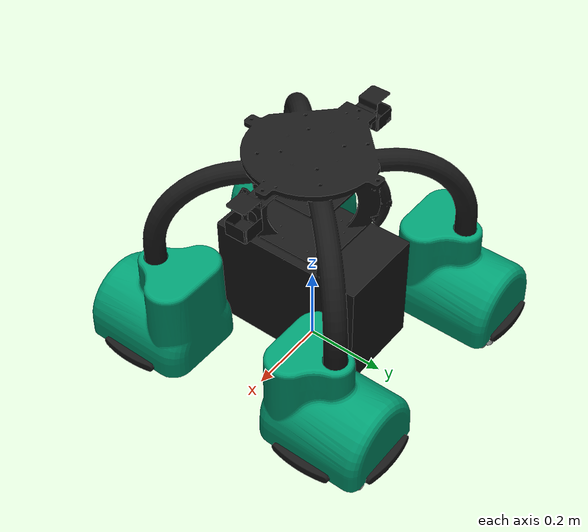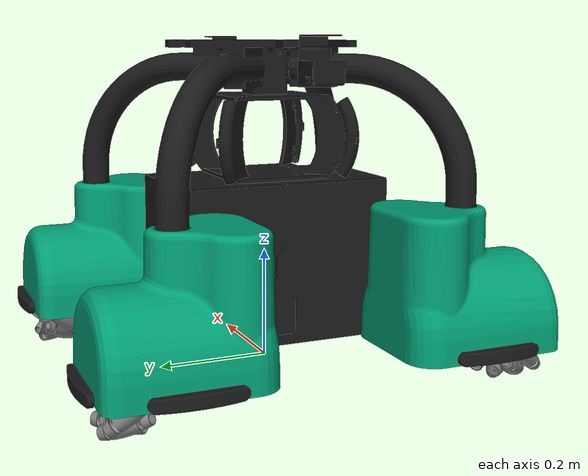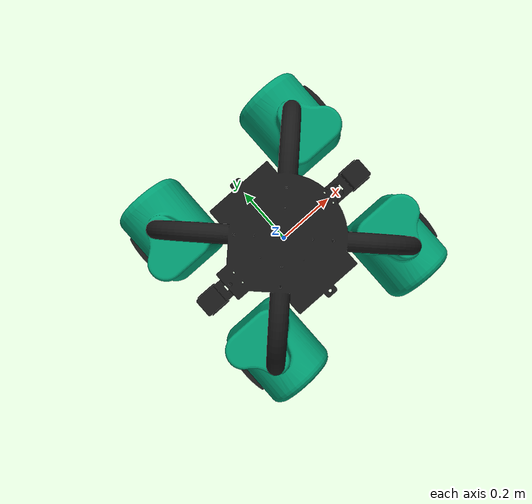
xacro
<?xml version="1.0"?>
<robot xmlns:xacro="http://www.ros.org/wiki/xacro" name="mobility_base">
  <xacro:arg name="gazebo" default="false"/>
  <xacro:arg name="baxter" default="false"/>
  <xacro:arg name="fast"   default="true"/>

  <xacro:property name="M_PI" value="3.1415926535897931" />

  <xacro:property name="base_mass" value="20" />
  <xacro:property name="base_length" value="0.2159" />
  <xacro:property name="base_width" value="0.381" />
  <xacro:property name="base_height" value="0.2921" />

  <xacro:property name="shroud_base_x" value="${0.5055/2}" />
  <xacro:property name="shroud_base_y" value="${0.5055/2}" />
  <xacro:property name="shroud_x" value="${0.2286/2}" />
  <xacro:property name="shroud_y" value="${0.2733/2}" />
  <xacro:property name="bumper_z" value="${-0.0189}" />
  <xacro:property name="bumper_travel" value="${0.003175}" />

  <xacro:property name="wheel_base_x" value="${0.5055/2}" />
  <xacro:property name="wheel_base_y" value="${0.6805/2}" />
  <xacro:property name="wheel_mass" value="2" />
  <xacro:property name="wheel_radius" value="0.1016" />
  <xacro:property name="wheel_width" value="0.0508" />

  <xacro:property name="roller_mass" value="0.0476272" />
  <xacro:property name="roller_radius" value="0.015875" />
  <xacro:property name="roller_length" value="0.0861568" />

  <xacro:property name="lidar_bracket_x" value="${0.2317}" />
  <xacro:property name="lidar_bracket_z" value="${0.4116}" />

  <xacro:property name="birdcage_plate" value="${0.0055}" />
  <xacro:property name="birdcage_bottom" value="${0.2440}" />
  <xacro:property name="birdcage_top" value="${0.3777}" />

  <xacro:property name="mount_x" value="$(optenv MB_MOUNT_X 0)" />
  <xacro:property name="mount_y" value="$(optenv MB_MOUNT_Y 0)" />
  <xacro:property name="mount_z" value="$(optenv MB_MOUNT_Z 0)" />
  <xacro:property name="mount_z_baxter" value="${0.5293}" />

  <!-- Materials -->
  <xacro:macro name="darkred_material" >
    <material name="darkred" >
      <color rgba=".5 .1 .1 1"/>
    </material>
  </xacro:macro>
  <xacro:macro name="grey_material" >
    <material name="grey" >
      <color rgba=".5 .5 .5 1"/>
    </material>
  </xacro:macro>
  <xacro:macro name="black_material" >
    <material name="black" >
      <color rgba=".1 .1 .1 1"/>
    </material>
  </xacro:macro>

  <!-- Macro Single Roller -->
  <xacro:macro name="roller_fixed" params="flip c s" >
    <visual>
      <origin xyz="${(wheel_radius-roller_radius)*(c)} ${(wheel_radius-roller_radius)*(s)} 0" rpy="${flip*M_PI/4*c} ${flip*M_PI/4*s} 0" />
      <geometry>
        <mesh filename="package://mobility_base_description/meshes/roller.STL" />
      </geometry>
      <xacro:grey_material />
    </visual>
  </xacro:macro>
  <xacro:macro name="roller_sim" params="parent prefix flip index" >
    <joint name="${prefix}_roller_${index}_base_joint" type="fixed" >
      <parent link="${parent}" />
      <child link="${prefix}_roller_${index}_base" />
      <origin xyz="0 0 0" rpy="0 0 ${index*M_PI/6}" />
      <axis xyz="0 0 1" />
    </joint>
    <link name="${prefix}_roller_${index}_base" >
      <visual>
        <origin xyz="0 0 0" rpy="0 0 0" />
        <geometry>
          <box size="0.000001 0.000001 0.000001" />
        </geometry>
      </visual>
      <inertial>
        <origin xyz="0 0 0" />
        <mass value="${wheel_mass/13}" />
        <inertia ixx="${1/12*wheel_mass/13*((3*wheel_radius*wheel_radius)+(wheel_width*wheel_width))}" ixy="0.0" ixz="0.0"
                 iyy="${1/12*wheel_mass/13*((3*wheel_radius*wheel_radius)+(wheel_width*wheel_width))}" iyz="0.0"
                 izz="${1/2*wheel_mass/13*(wheel_radius*wheel_radius)}" />
      </inertial>
    </link>
    <joint name="${prefix}_roller_${index}" type="continuous" >
      <parent link="${prefix}_roller_${index}_base" />
      <child link="${prefix}_roller_${index}" />
      <origin xyz="${wheel_radius-roller_radius} 0 0" rpy="${flip*M_PI/4} 0 0" />
      <axis xyz="0 0 1">
        <dynamics damping="0" friction="10"/>
      </axis>
    </joint>
    <link name="${prefix}_roller_${index}" >
      <visual>
        <origin xyz="0 0 0" rpy="0 0 0" />
        <geometry>
          <mesh filename="package://mobility_base_description/meshes/roller.STL"/>
        </geometry>
        <xacro:grey_material />
      </visual>
      <xacro:unless value="$(arg fast)">
        <collision>
          <origin xyz="0 0 0" rpy="0 0 0" />
          <geometry>
            <mesh filename="package://mobility_base_description/meshes/roller_collision.STL" />
          </geometry>
        </collision>
      </xacro:unless>
      <inertial>
        <origin xyz="0 0 0" />
        <mass value="${roller_mass}" />
        <inertia ixx="${1/12*roller_mass*((3*roller_radius*roller_radius)+(roller_length*roller_length))}" ixy="0.0" ixz="0.0"
                 iyy="${1/12*roller_mass*((3*roller_radius*roller_radius)+(roller_length*roller_length))}" iyz="0.0"
                 izz="${1/2*roller_mass*(roller_radius*roller_radius)}" />
      </inertial>
    </link>
    <gazebo reference="${prefix}_roller_${index}">
      <xacro:if value="$(arg fast)">
        <mu1>0.0</mu1>
        <mu2>0.0</mu2>
      </xacro:if>
      <xacro:unless value="$(arg fast)">
        <mu1>100.0</mu1>
        <mu2>50.0</mu2>
      </xacro:unless>
      <kp>100000000.0</kp>
      <kd>10000.0</kd>
      <material>Gazebo/Grey</material>
    </gazebo>
  </xacro:macro>

  <!-- Macro 12 Rollers in a wheel -->
  <xacro:macro name="rollers_fixed" params="flip" >
    <xacro:roller_fixed flip="${flip}" c=" 1.000000000" s=" 0.000000000" />
    <xacro:roller_fixed flip="${flip}" c=" 0.866025404" s=" 0.500000000" />
    <xacro:roller_fixed flip="${flip}" c=" 0.500000000" s=" 0.866025404" />
    <xacro:roller_fixed flip="${flip}" c=" 0.000000000" s=" 1.000000000" />
    <xacro:roller_fixed flip="${flip}" c="-0.500000000" s=" 0.866025404" />
    <xacro:roller_fixed flip="${flip}" c="-0.866025404" s=" 0.500000000" />
    <xacro:roller_fixed flip="${flip}" c="-1.000000000" s=" 0.000000000" />
    <xacro:roller_fixed flip="${flip}" c="-0.866025404" s="-0.500000000" />
    <xacro:roller_fixed flip="${flip}" c="-0.500000000" s="-0.866025404" />
    <xacro:roller_fixed flip="${flip}" c=" 0.000000000" s="-1.000000000" />
    <xacro:roller_fixed flip="${flip}" c=" 0.500000000" s="-0.866025404" />
    <xacro:roller_fixed flip="${flip}" c=" 0.866025404" s="-0.500000000" />
  </xacro:macro>
  <xacro:macro name="rollers_sim" params="parent prefix flip" >
    <xacro:roller_sim parent="${parent}" prefix="${prefix}" flip="${flip}" index="0"/>
    <xacro:roller_sim parent="${parent}" prefix="${prefix}" flip="${flip}" index="1"/>
    <xacro:roller_sim parent="${parent}" prefix="${prefix}" flip="${flip}" index="2"/>
    <xacro:roller_sim parent="${parent}" prefix="${prefix}" flip="${flip}" index="3"/>
    <xacro:roller_sim parent="${parent}" prefix="${prefix}" flip="${flip}" index="4"/>
    <xacro:roller_sim parent="${parent}" prefix="${prefix}" flip="${flip}" index="5"/>
    <xacro:roller_sim parent="${parent}" prefix="${prefix}" flip="${flip}" index="6"/>
    <xacro:roller_sim parent="${parent}" prefix="${prefix}" flip="${flip}" index="7"/>
    <xacro:roller_sim parent="${parent}" prefix="${prefix}" flip="${flip}" index="8"/>
    <xacro:roller_sim parent="${parent}" prefix="${prefix}" flip="${flip}" index="9"/>
    <xacro:roller_sim parent="${parent}" prefix="${prefix}" flip="${flip}" index="10"/>
    <xacro:roller_sim parent="${parent}" prefix="${prefix}" flip="${flip}" index="11"/>
  </xacro:macro>

  <!-- Macro Wheel with 12 rollers -->
  <xacro:macro name="mecanum_wheel_12" params="suffix reflectx reflecty flip hub" >
    <joint name="wheel${suffix}" type="continuous" >
      <parent link="base_link" />
      <child link="wheel${suffix}" />
      <origin xyz="${reflectx*wheel_base_x} ${reflecty*wheel_base_y} 0" rpy="${-M_PI/2} 0 0" />
      <axis xyz="0 0 1" />
      <!--dynamics damping="0" friction="1"/-->
    </joint>
    <link name="wheel${suffix}" >
      <visual>
        <origin xyz="0 0 0.02" rpy="0 0 0"/>
        <geometry>
          <xacro:if value="${hub}">
            <mesh filename="package://mobility_base_description/meshes/hub_left.STL" scale="0.001 0.001 0.001" />
          </xacro:if>
          <xacro:unless value="${hub}">
            <mesh filename="package://mobility_base_description/meshes/hub_right.STL" scale="0.001 0.001 0.001" />
          </xacro:unless>
        </geometry>
        <xacro:grey_material />
      </visual>
      <visual>
        <origin xyz="0 0 -0.02" rpy="${M_PI} 0 0"/>
        <geometry>
          <xacro:if value="${hub}">
            <mesh filename="package://mobility_base_description/meshes/hub_left.STL" scale="0.001 0.001 0.001" />
          </xacro:if>
          <xacro:unless value="${hub}">
            <mesh filename="package://mobility_base_description/meshes/hub_right.STL" scale="0.001 0.001 0.001" />
          </xacro:unless>
        </geometry>
        <xacro:grey_material />
      </visual>
      <collision>
        <origin xyz="0 0 0" rpy="0 0 0"/>
        <geometry>
        <xacro:if value="$(arg gazebo)">
          <xacro:if value="$(arg fast)">
            <cylinder length="${wheel_width}" radius="${wheel_radius}"/>
          </xacro:if>
          <xacro:unless value="$(arg fast)">
            <cylinder length="${wheel_width}" radius="0.065"/>
          </xacro:unless>
        </xacro:if>
        <xacro:unless value="$(arg gazebo)">
          <cylinder length="${wheel_width}" radius="${wheel_radius}"/>
        </xacro:unless>
        </geometry>
      </collision>
      <inertial>
        <origin xyz="0 0 0" />
        <mass value="${wheel_mass/13}" />
        <inertia ixx="${1/12*wheel_mass/13*((3*wheel_radius*wheel_radius)+(wheel_width*wheel_width))}" ixy="0.0" ixz="0.0"
                 iyy="${1/12*wheel_mass/13*((3*wheel_radius*wheel_radius)+(wheel_width*wheel_width))}" iyz="0.0"
                 izz="${1/2*wheel_mass/13*(wheel_radius*wheel_radius)}" />
      </inertial>
      <xacro:unless value="$(arg gazebo)">
        <xacro:rollers_fixed flip="${flip}"/>
      </xacro:unless>
      <xacro:if value="$(arg gazebo)">
        <xacro:if value="$(arg fast)">
          <xacro:rollers_fixed flip="${flip}"/>
        </xacro:if>
      </xacro:if>
      </link>
      <xacro:if value="$(arg gazebo)">
        <xacro:unless value="$(arg fast)">
          <xacro:rollers_sim parent="wheel${suffix}" prefix="wheel${suffix}" flip="${flip}"/>
        </xacro:unless>
      </xacro:if>

    <xacro:if value="$(arg fast)">
      <gazebo reference="wheel${suffix}">
        <mu1>0.0</mu1>
        <mu2>0.0</mu2>
        <kp>100000000.0</kp>
        <kd>10000.0</kd>
        <material>Gazebo/Grey</material>
      </gazebo>
    </xacro:if>

  </xacro:macro>

  <!-- Macro Shroud -->
  <xacro:macro name="shroud" params="reflectx reflecty yaw" >
      <visual>
        <origin xyz="${reflectx*shroud_base_x} ${reflecty*shroud_base_y} 0" rpy="0 0 ${yaw}"/>
        <geometry>
          <mesh filename="package://mobility_base_description/meshes/shroud.dae" />
        </geometry>
      </visual>
      <collision>
        <origin xyz="${reflectx*shroud_base_x} ${reflecty*shroud_base_y} 0" rpy="0 0 ${yaw}"/>
        <geometry>
          <mesh filename="package://mobility_base_description/meshes/shroud.dae" />
        </geometry>
      </collision>
  </xacro:macro>

  <!-- Macro Bumper -->
  <xacro:macro name="bumper" params="x1 y1 x2 y2 yaw" >
      <visual>
        <origin xyz="${x1*shroud_base_x + x2*(shroud_x+bumper_travel)} ${y1*shroud_base_y + y2*(shroud_y+bumper_travel)} ${bumper_z}" rpy="0 0 ${yaw}"/>
        <geometry>
          <mesh filename="package://mobility_base_description/meshes/bumper.STL" />
        </geometry>
        <xacro:black_material />
      </visual>
      <collision>
        <origin xyz="${x1*shroud_base_x + x2*(shroud_x+bumper_travel)} ${y1*shroud_base_y + y2*(shroud_y+bumper_travel)} ${bumper_z}" rpy="0 0 ${yaw}"/>
        <geometry>
          <mesh filename="package://mobility_base_description/meshes/bumper.STL" />
        </geometry>
      </collision>
  </xacro:macro>

  <!-- Macro Lidar Bracket -->
  <xacro:macro name="lidar_bracket" params="reflect yaw" >
      <visual>
        <origin xyz="${reflect*lidar_bracket_x} 0 ${lidar_bracket_z}" rpy="0 0 ${yaw}"/>
        <geometry>
          <mesh filename="package://mobility_base_description/meshes/lidar_bracket.STL" />
        </geometry>
        <xacro:black_material />
      </visual>
  </xacro:macro>

  <!-- Base Footprint -->
  <link name="base_footprint" />

  <!-- Base Link -->
  <joint name="footprint" type="fixed" >
   <parent link="base_footprint" />
    <child link="base_link" />
    <origin xyz="0 0 ${wheel_radius}" rpy="0 0 0" />
  </joint>
  <link name="base_link" >
    <visual>
      <origin xyz="0 0 0" rpy="0 0 0" />
      <geometry>
        <mesh filename="package://mobility_base_description/meshes/frame.STL" />
      </geometry>
      <xacro:black_material />
    </visual>
    <collision>
      <origin xyz="0 0 0" rpy="0 0 0" />
      <geometry>
        <mesh filename="package://mobility_base_description/meshes/frame.STL" />
      </geometry>
    </collision>
    <!-- Bumpers -->
    <xacro:bumper x1=" 1" y1=" 1" x2=" 1" y2=" 0" yaw="${0.0*M_PI}" />
    <xacro:bumper x1=" 1" y1=" 1" x2=" 0" y2=" 1" yaw="${0.5*M_PI}" />
    <!--xacro:bumper x1=" 1" y1=" 1" x2="-1" y2=" 0" yaw="${1.0*M_PI}" /-->
    <!--xacro:bumper x1=" 1" y1=" 1" x2=" 0" y2="-1" yaw="${1.5*M_PI}" /-->
    <xacro:bumper x1=" 1" y1="-1" x2=" 1" y2=" 0" yaw="${0.0*M_PI}" />
    <!--xacro:bumper x1=" 1" y1="-1" x2=" 0" y2=" 1" yaw="${0.5*M_PI}" /-->
    <!--xacro:bumper x1=" 1" y1="-1" x2="-1" y2=" 0" yaw="${1.0*M_PI}" /-->
    <xacro:bumper x1=" 1" y1="-1" x2=" 0" y2="-1" yaw="${1.5*M_PI}" />
    <!--xacro:bumper x1="-1" y1=" 1" x2=" 1" y2=" 0" yaw="${0.0*M_PI}" /-->
    <xacro:bumper x1="-1" y1=" 1" x2=" 0" y2=" 1" yaw="${0.5*M_PI}" />
    <xacro:bumper x1="-1" y1=" 1" x2="-1" y2=" 0" yaw="${1.0*M_PI}" />
    <!--xacro:bumper x1="-1" y1=" 1" x2=" 0" y2="-1" yaw="${1.5*M_PI}" /-->
    <!--xacro:bumper x1="-1" y1="-1" x2=" 1" y2=" 0" yaw="${0.0*M_PI}" /-->
    <!--xacro:bumper x1="-1" y1="-1" x2=" 0" y2=" 1" yaw="${0.5*M_PI}" /-->
    <xacro:bumper x1="-1" y1="-1" x2="-1" y2=" 0" yaw="${1.0*M_PI}" />
    <xacro:bumper x1="-1" y1="-1" x2=" 0" y2="-1" yaw="${1.5*M_PI}" />
    <!-- Lidar Brackets -->
    <xacro:lidar_bracket reflect=" 1" yaw="${0*M_PI}" />
    <xacro:lidar_bracket reflect="-1" yaw="${1*M_PI}" />
    <inertial>
      <origin xyz="0 0 0"/>
      <mass value="${base_mass}"/>
      <inertia ixx="${1/12*base_mass*(base_height*base_height + base_length*base_length)}" ixy="0.0" ixz="0.0"
               iyy="${1/12*base_mass*(base_width*base_width + base_length*base_length)}" iyz="0.0"
               izz="${1/12*base_mass*(base_width*base_width + base_height*base_height)}" />
    </inertial>
  </link>

  <!-- Base Shrouds -->
  <joint name="base_shrouds" type="fixed" >
   <parent link="base_link" />
    <child link="base_shrouds" />
    <origin xyz="0 0 0" rpy="0 0 0" />
  </joint>
  <link name="base_shrouds" >
    <xacro:shroud reflectx=" 1" reflecty=" 1" yaw="${0*M_PI}" />
    <xacro:shroud reflectx=" 1" reflecty="-1" yaw="${1*M_PI}" />
    <xacro:shroud reflectx="-1" reflecty=" 1" yaw="${0*M_PI}" />
    <xacro:shroud reflectx="-1" reflecty="-1" yaw="${1*M_PI}" />
  </link>

  <!-- Base (Baxter mount) -->
  <joint name="base" type="fixed" >
   <parent link="base_link" />
    <child link="base" />
    <origin xyz="${mount_x} ${mount_y} ${mount_z+mount_z_baxter}" rpy="0 0 0" />
  </joint>
  <xacro:unless value="$(arg baxter)" >
    <link name="base" >
    </link>
  </xacro:unless>
  <xacro:if value="$(arg baxter)" >
    <xacro:include filename="$(find mobility_base_description)/urdf/baxter.urdf.xacro" >
      <xacro:arg name="gazebo" value="true"/>
      <xacro:arg name="pedestal" value="false"/>
    </xacro:include>
  </xacro:if>

  <!-- Wheels -->
  <xacro:mecanum_wheel_12 suffix="_fl" reflectx=" 1" reflecty=" 1" flip="-1" hub="true" />
  <xacro:mecanum_wheel_12 suffix="_fr" reflectx=" 1" reflecty="-1" flip=" 1" hub="false" />
  <xacro:mecanum_wheel_12 suffix="_rl" reflectx="-1" reflecty=" 1" flip=" 1" hub="false" />
  <xacro:mecanum_wheel_12 suffix="_rr" reflectx="-1" reflecty="-1" flip="-1" hub="true" />

  <!-- Floor Camera -->
  <xacro:if value="$(optenv MB_FLOOR_CAMERA 1)">
    <xacro:include filename="$(find mobility_base_description)/urdf/sensors/LI-USB30-V034M.urdf.xacro"/>
    <LI-USB30-V034M parent="base_footprint" name="floor_camera" frame_rate="$(optenv MB_FLOOR_CAMERA_FRAME_RATE 15.0)">
      <origin xyz="0 0 0.077" rpy="0 ${M_PI/2} 0" />
    </LI-USB30-V034M>
  </xacro:if>

  <!-- Accessory LIDAR macros -->
  <xacro:include filename="$(find mobility_base_description)/urdf/sensors/Hokuyo_URG-04LX.urdf.xacro"/>
  <xacro:include filename="$(find mobility_base_description)/urdf/sensors/Hokuyo_UST-10LX.urdf.xacro"/>
  <xacro:include filename="$(find mobility_base_description)/urdf/sensors/Hokuyo_UST-20LX.urdf.xacro"/>

  <!-- Front Hokuyo LIDAR -->
  <xacro:if value="$(optenv MB_LASER_FRONT_HOKUYO 0)">
    <xacro:if value="$(optenv MB_LASER_FRONT_HOKUYO_URG_04LX 0)">
      <Hokuyo_URG-04LX parent="base_link" name="laser_front_hokuyo">
        <origin xyz="${lidar_bracket_x} 0 ${lidar_bracket_z}" rpy="0 0 0" />
      </Hokuyo_URG-04LX>
    </xacro:if>
    <xacro:if value="$(optenv MB_LASER_FRONT_HOKUYO_UST_10LX 0)">
      <Hokuyo_UST-10LX parent="base_link" name="laser_front_hokuyo">
        <origin xyz="${lidar_bracket_x} 0 ${lidar_bracket_z}" rpy="0 0 0" />
      </Hokuyo_UST-10LX>
    </xacro:if>
    <xacro:if value="$(optenv MB_LASER_FRONT_HOKUYO_UST_20LX 0)">
      <Hokuyo_UST-20LX parent="base_link" name="laser_front_hokuyo">
        <origin xyz="${lidar_bracket_x} 0 ${lidar_bracket_z}" rpy="0 0 0" />
      </Hokuyo_UST-20LX>
    </xacro:if>
  </xacro:if>

  <!-- Rear Hokuyo LIDAR -->
  <xacro:if value="$(optenv MB_LASER_REAR_HOKUYO 0)">
    <xacro:if value="$(optenv MB_LASER_REAR_HOKUYO_URG_04LX 0)">
      <Hokuyo_URG-04LX parent="base_link" name="laser_rear_hokuyo">
        <origin xyz="${-lidar_bracket_x} 0 ${lidar_bracket_z}" rpy="0 0 ${M_PI}" />
      </Hokuyo_URG-04LX>
    </xacro:if>
    <xacro:if value="$(optenv MB_LASER_REAR_HOKUYO_UST_10LX 0)">
      <Hokuyo_UST-10LX parent="base_link" name="laser_rear_hokuyo">
        <origin xyz="${-lidar_bracket_x} 0 ${lidar_bracket_z}" rpy="0 0 ${M_PI}" />
      </Hokuyo_UST-10LX>
    </xacro:if>
    <xacro:if value="$(optenv MB_LASER_REAR_HOKUYO_UST_20LX 0)">
      <Hokuyo_UST-20LX parent="base_link" name="laser_rear_hokuyo">
        <origin xyz="${-lidar_bracket_x} 0 ${lidar_bracket_z}" rpy="0 0 ${M_PI}" />
      </Hokuyo_UST-20LX>
    </xacro:if>
  </xacro:if>

  <!-- Birdcage Pepperl Fuchs R2000 LIDAR -->
  <xacro:if value="$(optenv MB_LASER_BIRDCAGE_R2000 0)">
    <xacro:include filename="$(find mobility_base_description)/urdf/sensors/Pepperl-Fuchs-R2000.urdf.xacro"/>
    <Pepperl-Fuchs-R2000 parent="base_link" name="laser_birdcage_r2000">
      <origin xyz="0 0 ${birdcage_bottom+birdcage_plate}" rpy="0 0 0" />
    </Pepperl-Fuchs-R2000>
  </xacro:if>

  <!-- Birdcage Velodyne VLP-16 LIDAR -->
  <xacro:if value="$(optenv MB_LASER_BIRDCAGE_VLP16 0)">
    <xacro:include filename="$(find velodyne_description)/urdf/VLP-16.urdf.xacro"/>
    <VLP-16 parent="base_link" name="laser_birdcage_vlp16" topic="/laser_birdcage_vlp16/points">
      <xacro:unless value="$(optenv MB_LASER_BIRDCAGE_VLP16_FLIP 0)">
        <origin xyz="0 0 ${birdcage_bottom+birdcage_plate}" rpy="0 0 0" />
      </xacro:unless>
      <xacro:if value="$(optenv MB_LASER_BIRDCAGE_VLP16_FLIP 0)">
        <origin xyz="0 0 ${birdcage_top-birdcage_plate}" rpy="${M_PI} 0 0" />
      </xacro:if>
    </VLP-16>
  </xacro:if>

  <!-- Gazebo -->
  <gazebo reference="base_link">
    <material>Gazebo/Black</material>
  </gazebo>
  <gazebo reference="wheel_fl">
    <material>Gazebo/Grey</material>
  </gazebo>
  <gazebo reference="wheel_fr">
    <material>Gazebo/Grey</material>
  </gazebo>
  <gazebo reference="wheel_rl">
    <material>Gazebo/Grey</material>
  </gazebo>
  <gazebo reference="wheel_rr">
    <material>Gazebo/Grey</material>
  </gazebo>
  <gazebo>
    <plugin name="gazebo_mobility_base_plugin" filename="libmobility_base_gazebo_plugins.so">
      <fast>$(arg fast)</fast>
      <parent_frame_id>/map</parent_frame_id>
      <child_frame_id>/mobility_base_sim</child_frame_id>
    </plugin>
  </gazebo>

</robot>

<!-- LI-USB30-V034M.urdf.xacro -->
<robot xmlns:xacro="http://www.ros.org/wiki/xacro" name="LI-USB30-V034M">
  <xacro:macro name="LI-USB30-V034M" params="parent name *origin frame_rate">
    <joint name="${name}_base_joint" type="fixed">
      <xacro:insert_block name="origin" />
      <parent link="${parent}"/>
      <child link="${name}_base_frame" />
    </joint>
    <link name="${name}_base_frame">
      <inertial>
        <mass value="0.001" />
        <origin xyz="0 0 0" />
        <inertia ixx="0.0001" ixy="0.0" ixz="0.0"
                 iyy="0.0001" iyz="0.0"
                 izz="0.0001" />
      </inertial>
    </link>
    <joint name="${name}_optical_joint" type="fixed">
      <origin xyz="0 0 0" rpy="${-M_PI/2} 0 ${-M_PI/2}" />
      <parent link="${name}_base_frame" />
      <child link="${name}_optical_frame" />
    </joint>
    <link name="${name}_optical_frame">
      <inertial>
        <mass value="0.001" />
        <origin xyz="0 0 0" />
        <inertia ixx="0.0001" ixy="0.0" ixz="0.0"
                 iyy="0.0001" iyz="0.0"
                 izz="0.0001" />
      </inertial>
    </link>

    <gazebo reference="${name}_optical_frame">
      <sensor type="camera" name="${name}">
        <update_rate>${frame_rate}</update_rate>
        <camera name="${name}">
          <horizontal_fov>1.3962634</horizontal_fov>
          <image>
            <width>640</width>
            <height>480</height>
            <format>L8</format>
          </image>
          <clip>
            <near>0.02</near>
            <far>100</far>
          </clip>
          <noise>
            <type>gaussian</type>
            <mean>0.0</mean>
            <stddev>0.007</stddev>
          </noise>
        </camera>
        <plugin name="camera_controller" filename="libgazebo_ros_camera.so">
          <alwaysOn>false</alwaysOn>
          <updateRate>0.0</updateRate>
          <cameraName>${name}</cameraName>
          <imageTopicName>image_raw</imageTopicName>
          <cameraInfoTopicName>camera_info</cameraInfoTopicName>
          <frameName>${name}_optical_frame</frameName>
          <hackBaseline>0.07</hackBaseline>
          <distortionK1>0.0</distortionK1>
          <distortionK2>0.0</distortionK2>
          <distortionK3>0.0</distortionK3>
          <distortionT1>0.0</distortionT1>
          <distortionT2>0.0</distortionT2>
        </plugin>
      </sensor>
    </gazebo>
  </xacro:macro>
</robot>
